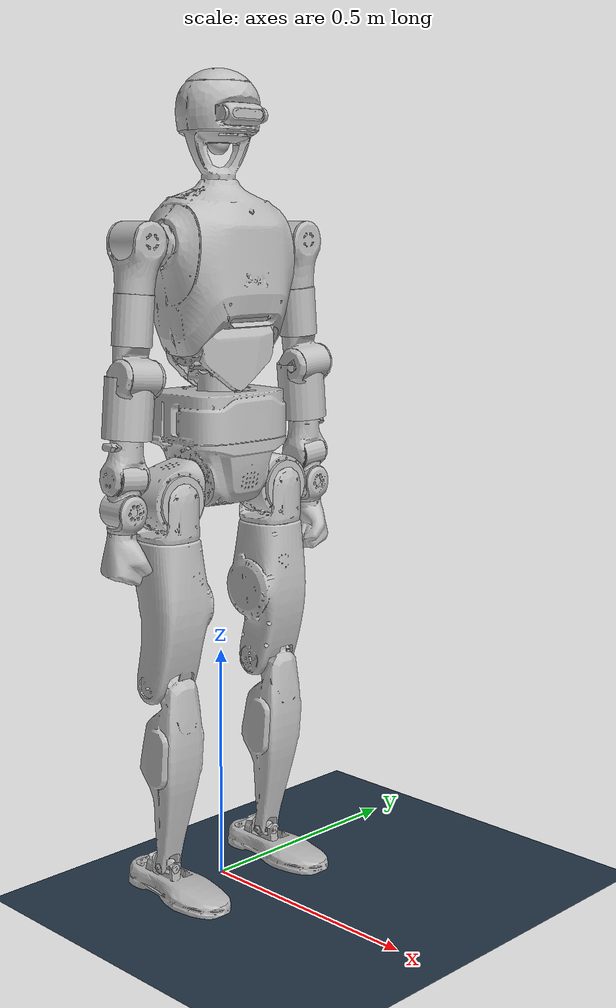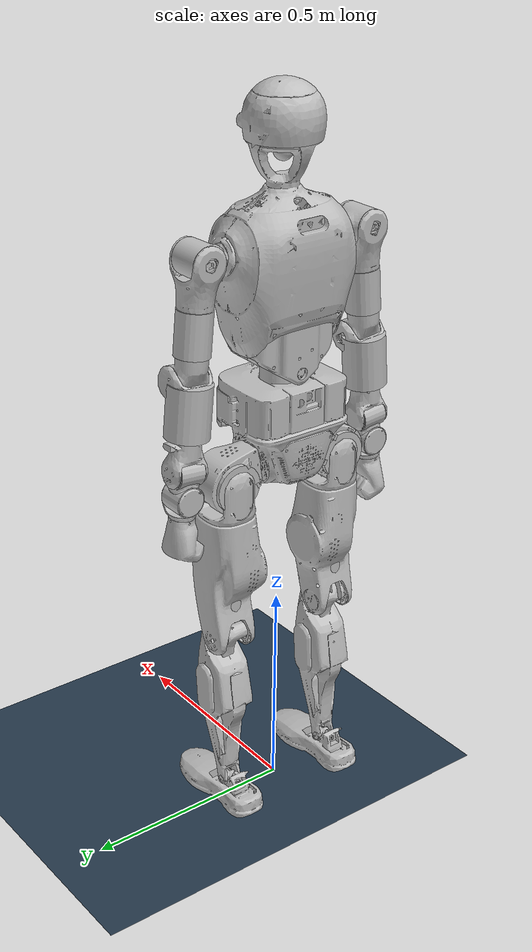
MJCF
<mujoco model="tiangong3">
  <compiler angle="radian" meshdir="../meshes/"/>
  <option integrator="implicitfast" timestep='0.001' iterations='100' solver='CG' gravity='0 0 -9.81'>
  <flag contact="enable" energy="enable"/>
  </option>
  <!-- 禁用位置控制器 -->
  <option actuatorgroupdisable="0 1 3"/>

  <default>
    <default class="large_actuator">
      <position kp="2000" kv="100" forcerange="-105 105"/>
    </default>
    <default class="small_actuator">
      <position kp="500" kv="50" forcerange="-52 52"/>
    </default>
  </default>

  <default>
    <default class="arm_motor">
      <joint damping="1" armature="0.1" frictionloss="0.1"/>
    </default>
    <default class="wrist_motor">
      <joint damping="1" armature="0.0236" frictionloss="0.1"/>
    </default>
    <default class="waist_motor">
      <joint damping="1" armature="0.17" frictionloss="0.1"/>
    </default>
    <default class="hip_pitch_motor">
      <joint damping="1" armature="0.24" frictionloss="0.1"/>
    </default>
    <default class="hip_roll_motor">
      <joint damping="1" armature="0.24" frictionloss="0.1"/>
    </default>
    <default class="hip_yaw_motor">
      <joint damping="1" armature="0.18" frictionloss="0.1"/>
    </default>
    <default class="knee_motor">
      <joint damping="1" armature="0.37" frictionloss="0.1"/>
    </default>
    <default class="ankle_motor">
      <joint damping="1" armature="0.032" frictionloss="0.1"/>
    </default>
  </default>

  <actuator>
    <!-- 位置控制器（pos_前缀） -->
    <!-- 左腿关节驱动器 -->
    <position class="large_actuator" name="pos_hip_pitch_l_joint" joint="hip_pitch_l_joint" ctrlrange="-3.05433 2.79253" group="0"/>
    <position class="large_actuator" name="pos_hip_roll_l_joint" joint="hip_roll_l_joint" ctrlrange="-0.418879 2.61799" group="0"/>
    <position class="large_actuator" name="pos_hip_yaw_l_joint" joint="hip_yaw_l_joint" ctrlrange="-1.39626 4.45059" group="0"/>
    <position class="large_actuator" name="pos_knee_pitch_l_joint" joint="knee_pitch_l_joint" ctrlrange="-0.0872665 2.53073" group="0"/>
    <position class="large_actuator" name="pos_ankle_pitch_l_joint" joint="ankle_pitch_l_joint" ctrlrange="-1.18682 0.523599" group="0"/>
    <position class="small_actuator" name="pos_ankle_roll_l_joint" joint="ankle_roll_l_joint" ctrlrange="-0.523599 0.523599" group="0"/>

    <!-- 右腿关节驱动器 -->
    <position class="large_actuator" name="pos_hip_pitch_r_joint" joint="hip_pitch_r_joint" ctrlrange="-3.05433 2.79253" group="0"/>
    <position class="large_actuator" name="pos_hip_roll_r_joint" joint="hip_roll_r_joint" ctrlrange="-2.61799 0.418879" group="0"/>
    <position class="large_actuator" name="pos_hip_yaw_r_joint" joint="hip_yaw_r_joint" ctrlrange="-4.45059 1.39626" group="0"/>
    <position class="large_actuator" name="pos_knee_pitch_r_joint" joint="knee_pitch_r_joint" ctrlrange="-0.0872665 2.53073" group="0"/>
    <position class="large_actuator" name="pos_ankle_pitch_r_joint" joint="ankle_pitch_r_joint" ctrlrange="-1.18682 0.523599" group="0"/>
    <position class="small_actuator" name="pos_ankle_roll_r_joint" joint="ankle_roll_r_joint" ctrlrange="-0.523599 0.523599" group="0"/>

    <!-- 腰部关节驱动器 -->
    <position class="large_actuator" name="pos_waist_yaw_joint" joint="waist_yaw_joint" ctrlrange="-2.61799 3.22886" group="1"/>
    <position class="large_actuator" name="pos_waist_roll_joint" joint="waist_roll_joint" ctrlrange="-0.436332 0.436332" group="1"/>
    <position class="large_actuator" name="pos_waist_pitch_joint" joint="waist_pitch_joint" ctrlrange="-0.523599 0.872665" group="1"/>

    <!-- 头部关节驱动器 -->
    <position class="small_actuator" name="pos_head_yaw_joint" joint="head_yaw_joint" ctrlrange="-1.0472 1.0472" group="3"/>
    <position class="small_actuator" name="pos_head_pitch_joint" joint="head_pitch_joint" ctrlrange="-0.872665 0.261799" group="3"/>

    <!-- 上肢关节驱动器 -->
    <position class="large_actuator" name="pos_shoulder_pitch_l_joint" joint="shoulder_pitch_l_joint" ctrlrange="-2.84489 2.84489" group="3"/>
    <position class="large_actuator" name="pos_shoulder_roll_l_joint" joint="shoulder_roll_l_joint" ctrlrange="-0.191986 3.33358" group="3"/>
    <position class="large_actuator" name="pos_shoulder_yaw_l_joint" joint="shoulder_yaw_l_joint" ctrlrange="-2.84489 2.84489" group="3"/>
    <position class="large_actuator" name="pos_elbow_pitch_l_joint" joint="elbow_pitch_l_joint" ctrlrange="-2.54818 0.191986" group="3"/>
    <position class="large_actuator" name="pos_elbow_yaw_l_joint" joint="elbow_yaw_l_joint" ctrlrange="-2.84489 2.84489" group="3"/>
    <position class="large_actuator" name="pos_wrist_pitch_l_joint" joint="wrist_pitch_l_joint" ctrlrange="-1.32645 1.32645" group="3"/>
    <position class="small_actuator" name="pos_wrist_roll_l_joint" joint="wrist_roll_l_joint" ctrlrange="-1.32645 1.32645" group="3"/>

    <position class="large_actuator" name="pos_shoulder_pitch_r_joint" joint="shoulder_pitch_r_joint" ctrlrange="-2.84489 2.84489" group="3"/>
    <position class="large_actuator" name="pos_shoulder_roll_r_joint" joint="shoulder_roll_r_joint" ctrlrange="-3.33358 0.191986" group="3"/>
    <position class="large_actuator" name="pos_shoulder_yaw_r_joint" joint="shoulder_yaw_r_joint" ctrlrange="-2.84489 2.84489" group="3"/>
    <position class="large_actuator" name="pos_elbow_pitch_r_joint" joint="elbow_pitch_r_joint" ctrlrange="-2.54818 0.191986" group="3"/>
    <position class="large_actuator" name="pos_elbow_yaw_r_joint" joint="elbow_yaw_r_joint" ctrlrange="-2.84489 2.84489" group="3"/>
    <position class="large_actuator" name="pos_wrist_pitch_r_joint" joint="wrist_pitch_r_joint" ctrlrange="-1.32645 1.32645" group="3"/>
    <position class="small_actuator" name="pos_wrist_roll_r_joint" joint="wrist_roll_r_joint" ctrlrange="-1.32645 1.32645" group="3"/>

    <!-- 力控制器（motor_前缀） -->
    <!-- 左腿关节驱动器 -->
    <motor name="motor_hip_pitch_l_joint" joint="hip_pitch_l_joint" ctrlrange="-235 235" group="2"/>
    <motor name="motor_hip_roll_l_joint" joint="hip_roll_l_joint" ctrlrange="-235 235" group="2"/>
    <motor name="motor_hip_yaw_l_joint" joint="hip_yaw_l_joint" ctrlrange="-150 150" group="2"/>
    <motor name="motor_knee_pitch_l_joint" joint="knee_pitch_l_joint" ctrlrange="-400 400" group="2"/>
    <motor name="motor_ankle_pitch_l_joint" joint="ankle_pitch_l_joint" ctrlrange="-55 55" group="2"/>
    <motor name="motor_ankle_roll_l_joint" joint="ankle_roll_l_joint" ctrlrange="-55 55" group="2"/>

    <!-- 右腿关节驱动器 -->
    <motor name="motor_hip_pitch_r_joint" joint="hip_pitch_r_joint" ctrlrange="-235 235" group="2"/>
    <motor name="motor_hip_roll_r_joint" joint="hip_roll_r_joint" ctrlrange="-235 235" group="2"/>
    <motor name="motor_hip_yaw_r_joint" joint="hip_yaw_r_joint" ctrlrange="-150 150" group="2"/>
    <motor name="motor_knee_pitch_r_joint" joint="knee_pitch_r_joint" ctrlrange="-400 400" group="2"/>
    <motor name="motor_ankle_pitch_r_joint" joint="ankle_pitch_r_joint" ctrlrange="-55 55" group="2"/>
    <motor name="motor_ankle_roll_r_joint" joint="ankle_roll_r_joint" ctrlrange="-55 55" group="2"/>

    <!-- 腰部关节驱动器 -->
    <motor name="motor_waist_yaw_joint" joint="waist_yaw_joint" ctrlrange="-91 91" group="2"/>
    <motor name="motor_waist_roll_joint" joint="waist_roll_joint" ctrlrange="-91 91" group="2"/>
    <motor name="motor_waist_pitch_joint" joint="waist_pitch_joint" ctrlrange="-91 91" group="2"/>

    <!-- 头部关节驱动器 -->
    <motor name="motor_head_yaw_joint" joint="head_yaw_joint" ctrlrange="-6.3 6.3" group="2"/>
    <motor name="motor_head_pitch_joint" joint="head_pitch_joint" ctrlrange="-6.3 6.3" group="2"/>

    <!-- 上肢关节驱动器 -->
    <motor name="motor_shoulder_pitch_l_joint" joint="shoulder_pitch_l_joint" ctrlrange="-91 91" group="2"/>
    <motor name="motor_shoulder_roll_l_joint" joint="shoulder_roll_l_joint" ctrlrange="-60 60" group="2"/>
    <motor name="motor_shoulder_yaw_l_joint" joint="shoulder_yaw_l_joint" ctrlrange="-36 36" group="2"/>
    <motor name="motor_elbow_pitch_l_joint" joint="elbow_pitch_l_joint" ctrlrange="-60 60" group="2"/>
    <motor name="motor_elbow_yaw_l_joint" joint="elbow_yaw_l_joint" ctrlrange="-36 36" group="2"/>
    <motor name="motor_wrist_pitch_l_joint" joint="wrist_pitch_l_joint" ctrlrange="-36 36" group="2"/>
    <motor name="motor_wrist_roll_l_joint" joint="wrist_roll_l_joint" ctrlrange="-36 36" group="2"/>

    <motor name="motor_shoulder_pitch_r_joint" joint="shoulder_pitch_r_joint" ctrlrange="-91 91" group="2"/>
    <motor name="motor_shoulder_roll_r_joint" joint="shoulder_roll_r_joint" ctrlrange="-60 60" group="2"/>
    <motor name="motor_shoulder_yaw_r_joint" joint="shoulder_yaw_r_joint" ctrlrange="-36 36" group="2"/>
    <motor name="motor_elbow_pitch_r_joint" joint="elbow_pitch_r_joint" ctrlrange="-60 60" group="2"/>
    <motor name="motor_elbow_yaw_r_joint" joint="elbow_yaw_r_joint" ctrlrange="-36 36" group="2"/>
    <motor name="motor_wrist_pitch_r_joint" joint="wrist_pitch_r_joint" ctrlrange="-36 36" group="2"/>
    <motor name="motor_wrist_roll_r_joint" joint="wrist_roll_r_joint" ctrlrange="-36 36" group="2"/>
  </actuator>

  <sensor>
    <!-- 左腿关节传感器 -->
    <jointpos name="hip_pitch_l_joint_pos" joint="hip_pitch_l_joint"/>
    <jointpos name="hip_roll_l_joint_pos" joint="hip_roll_l_joint"/>
    <jointpos name="hip_yaw_l_joint_pos" joint="hip_yaw_l_joint"/>
    <jointpos name="knee_pitch_l_joint_pos" joint="knee_pitch_l_joint"/>
    <jointpos name="ankle_pitch_l_joint_pos" joint="ankle_pitch_l_joint"/>
    <jointpos name="ankle_roll_l_joint_pos" joint="ankle_roll_l_joint"/>

    <jointvel name="hip_pitch_l_joint_vel" joint="hip_pitch_l_joint"/>
    <jointvel name="hip_roll_l_joint_vel" joint="hip_roll_l_joint"/>
    <jointvel name="hip_yaw_l_joint_vel" joint="hip_yaw_l_joint"/>
    <jointvel name="knee_pitch_l_joint_vel" joint="knee_pitch_l_joint"/>
    <jointvel name="ankle_pitch_l_joint_vel" joint="ankle_pitch_l_joint"/>
    <jointvel name="ankle_roll_l_joint_vel" joint="ankle_roll_l_joint"/>

    <jointactuatorfrc name="hip_pitch_l_joint_torque" joint="hip_pitch_l_joint"/>
    <jointactuatorfrc name="hip_roll_l_joint_torque" joint="hip_roll_l_joint"/>
    <jointactuatorfrc name="hip_yaw_l_joint_torque" joint="hip_yaw_l_joint"/>
    <jointactuatorfrc name="knee_pitch_l_joint_torque" joint="knee_pitch_l_joint"/>
    <jointactuatorfrc name="ankle_pitch_l_joint_torque" joint="ankle_pitch_l_joint"/>
    <jointactuatorfrc name="ankle_roll_l_joint_torque" joint="ankle_roll_l_joint"/>

    <!-- 右腿关节传感器 -->
    <jointpos name="hip_pitch_r_joint_pos" joint="hip_pitch_r_joint"/>
    <jointpos name="hip_roll_r_joint_pos" joint="hip_roll_r_joint"/>
    <jointpos name="hip_yaw_r_joint_pos" joint="hip_yaw_r_joint"/>
    <jointpos name="knee_pitch_r_joint_pos" joint="knee_pitch_r_joint"/>
    <jointpos name="ankle_pitch_r_joint_pos" joint="ankle_pitch_r_joint"/>
    <jointpos name="ankle_roll_r_joint_pos" joint="ankle_roll_r_joint"/>

    <jointvel name="hip_pitch_r_joint_vel" joint="hip_pitch_r_joint"/>
    <jointvel name="hip_roll_r_joint_vel" joint="hip_roll_r_joint"/>
    <jointvel name="hip_yaw_r_joint_vel" joint="hip_yaw_r_joint"/>
    <jointvel name="knee_pitch_r_joint_vel" joint="knee_pitch_r_joint"/>
    <jointvel name="ankle_pitch_r_joint_vel" joint="ankle_pitch_r_joint"/>
    <jointvel name="ankle_roll_r_joint_vel" joint="ankle_roll_r_joint"/>

    <jointactuatorfrc name="hip_pitch_r_joint_torque" joint="hip_pitch_r_joint"/>
    <jointactuatorfrc name="hip_roll_r_joint_torque" joint="hip_roll_r_joint"/>
    <jointactuatorfrc name="hip_yaw_r_joint_torque" joint="hip_yaw_r_joint"/>
    <jointactuatorfrc name="knee_pitch_r_joint_torque" joint="knee_pitch_r_joint"/>
    <jointactuatorfrc name="ankle_pitch_r_joint_torque" joint="ankle_pitch_r_joint"/>
    <jointactuatorfrc name="ankle_roll_r_joint_torque" joint="ankle_roll_r_joint"/>

    <!-- 腰部关节传感器 -->
    <jointpos name="waist_yaw_joint_pos" joint="waist_yaw_joint"/>
    <jointpos name="waist_roll_joint_pos" joint="waist_roll_joint"/>
    <jointpos name="waist_pitch_joint_pos" joint="waist_pitch_joint"/>

    <jointvel name="waist_yaw_joint_vel" joint="waist_yaw_joint"/>
    <jointvel name="waist_roll_joint_vel" joint="waist_roll_joint"/>
    <jointvel name="waist_pitch_joint_vel" joint="waist_pitch_joint"/>

    <jointactuatorfrc name="waist_yaw_joint_torque" joint="waist_yaw_joint"/>
    <jointactuatorfrc name="waist_roll_joint_torque" joint="waist_roll_joint"/>
    <jointactuatorfrc name="waist_pitch_joint_torque" joint="waist_pitch_joint"/>

    <!-- 头部关节传感器 -->
    <jointpos name="head_yaw_joint_pos" joint="head_yaw_joint"/>
    <jointpos name="head_pitch_joint_pos" joint="head_pitch_joint"/>

    <jointvel name="head_yaw_joint_vel" joint="head_yaw_joint"/>
    <jointvel name="head_pitch_joint_vel" joint="head_pitch_joint"/>

    <jointactuatorfrc name="head_yaw_joint_torque" joint="head_yaw_joint"/>
    <jointactuatorfrc name="head_pitch_joint_torque" joint="head_pitch_joint"/>

    <!-- 左臂关节传感器 -->
    <jointpos name="shoulder_pitch_l_joint_pos" joint="shoulder_pitch_l_joint"/>
    <jointpos name="shoulder_roll_l_joint_pos" joint="shoulder_roll_l_joint"/>
    <jointpos name="shoulder_yaw_l_joint_pos" joint="shoulder_yaw_l_joint"/>
    <jointpos name="elbow_pitch_l_joint_pos" joint="elbow_pitch_l_joint"/>
    <jointpos name="elbow_yaw_l_joint_pos" joint="elbow_yaw_l_joint"/>
    <jointpos name="wrist_pitch_l_joint_pos" joint="wrist_pitch_l_joint"/>
    <jointpos name="wrist_roll_l_joint_pos" joint="wrist_roll_l_joint"/>

    <jointvel name="shoulder_pitch_l_joint_vel" joint="shoulder_pitch_l_joint"/>
    <jointvel name="shoulder_roll_l_joint_vel" joint="shoulder_roll_l_joint"/>
    <jointvel name="shoulder_yaw_l_joint_vel" joint="shoulder_yaw_l_joint"/>
    <jointvel name="elbow_pitch_l_joint_vel" joint="elbow_pitch_l_joint"/>
    <jointvel name="elbow_yaw_l_joint_vel" joint="elbow_yaw_l_joint"/>
    <jointvel name="wrist_pitch_l_joint_vel" joint="wrist_pitch_l_joint"/>
    <jointvel name="wrist_roll_l_joint_vel" joint="wrist_roll_l_joint"/>

    <jointactuatorfrc name="shoulder_pitch_l_joint_torque" joint="shoulder_pitch_l_joint"/>
    <jointactuatorfrc name="shoulder_roll_l_joint_torque" joint="shoulder_roll_l_joint"/>
    <jointactuatorfrc name="shoulder_yaw_l_joint_torque" joint="shoulder_yaw_l_joint"/>
    <jointactuatorfrc name="elbow_pitch_l_joint_torque" joint="elbow_pitch_l_joint"/>
    <jointactuatorfrc name="elbow_yaw_l_joint_torque" joint="elbow_yaw_l_joint"/>
    <jointactuatorfrc name="wrist_pitch_l_joint_torque" joint="wrist_pitch_l_joint"/>
    <jointactuatorfrc name="wrist_roll_l_joint_torque" joint="wrist_roll_l_joint"/>

    <!-- 右臂关节传感器 -->
    <jointpos name="shoulder_pitch_r_joint_pos" joint="shoulder_pitch_r_joint"/>
    <jointpos name="shoulder_roll_r_joint_pos" joint="shoulder_roll_r_joint"/>
    <jointpos name="shoulder_yaw_r_joint_pos" joint="shoulder_yaw_r_joint"/>
    <jointpos name="elbow_pitch_r_joint_pos" joint="elbow_pitch_r_joint"/>
    <jointpos name="elbow_yaw_r_joint_pos" joint="elbow_yaw_r_joint"/>
    <jointpos name="wrist_pitch_r_joint_pos" joint="wrist_pitch_r_joint"/>
    <jointpos name="wrist_roll_r_joint_pos" joint="wrist_roll_r_joint"/>

    <jointvel name="shoulder_pitch_r_joint_vel" joint="shoulder_pitch_r_joint"/>
    <jointvel name="shoulder_roll_r_joint_vel" joint="shoulder_roll_r_joint"/>
    <jointvel name="shoulder_yaw_r_joint_vel" joint="shoulder_yaw_r_joint"/>
    <jointvel name="elbow_pitch_r_joint_vel" joint="elbow_pitch_r_joint"/>
    <jointvel name="elbow_yaw_r_joint_vel" joint="elbow_yaw_r_joint"/>
    <jointvel name="wrist_pitch_r_joint_vel" joint="wrist_pitch_r_joint"/>
    <jointvel name="wrist_roll_r_joint_vel" joint="wrist_roll_r_joint"/>

    <jointactuatorfrc name="shoulder_pitch_r_joint_torque" joint="shoulder_pitch_r_joint"/>
    <jointactuatorfrc name="shoulder_roll_r_joint_torque" joint="shoulder_roll_r_joint"/>
    <jointactuatorfrc name="shoulder_yaw_r_joint_torque" joint="shoulder_yaw_r_joint"/>
    <jointactuatorfrc name="elbow_pitch_r_joint_torque" joint="elbow_pitch_r_joint"/>
    <jointactuatorfrc name="elbow_yaw_r_joint_torque" joint="elbow_yaw_r_joint"/>
    <jointactuatorfrc name="wrist_pitch_r_joint_torque" joint="wrist_pitch_r_joint"/>
    <jointactuatorfrc name="wrist_roll_r_joint_torque" joint="wrist_roll_r_joint"/>

    <!-- imu -->
    <framequat name="orientation" objtype="site" objname="imu" />
    <gyro name="angular-velocity" site="imu" />
    <accelerometer name="linear-acceleration" site="imu" />
    <framepos name="position" objtype="site" objname="imu" />
    <framelinvel name="linear-velocity" objtype="site" objname="imu" />
    <magnetometer name='magnetometer' site='imu'/>
  </sensor>

  <asset>
    <texture name="texplane" type="2d" builtin="checker" rgb1=".2 .3 .4" rgb2=".1 0.15 0.2"
        width="512" height="512" mark="cross" markrgb=".8 .8 .8"/>
    <texture name="texplane2" type="2d" builtin="checker" rgb1="1 0.3137 0.1843" rgb2="0.0 0.30196 0.38039"
        width="512" height="512" mark="cross" markrgb=".8 .8 .8"/>
    <material name="matplane" reflectance="0." texture="texplane" texrepeat="1 1" texuniform="true"/>
    <material name="matplane2" reflectance="0.1" texture="texplane2" texrepeat="1 1" texuniform="true"/>

    <mesh name="pelvis" file="pelvis.STL"/>
    <mesh name="hip_pitch_l_link" file="hip_pitch_l_link.STL"/>
    <mesh name="hip_roll_l_link" file="hip_roll_l_link.STL"/>
    <mesh name="hip_yaw_l_link" file="hip_yaw_l_link.STL"/>
    <mesh name="knee_pitch_l_link" file="knee_pitch_l_link.STL"/>
    <mesh name="ankle_pitch_l_link" file="ankle_pitch_l_link.STL"/>
    <mesh name="ankle_roll_l_link" file="ankle_roll_l_link.STL"/>
    <mesh name="hip_pitch_r_link" file="hip_pitch_r_link.STL"/>
    <mesh name="hip_roll_r_link" file="hip_roll_r_link.STL"/>
    <mesh name="hip_yaw_r_link" file="hip_yaw_r_link.STL"/>
    <mesh name="knee_pitch_r_link" file="knee_pitch_r_link.STL"/>
    <mesh name="ankle_pitch_r_link" file="ankle_pitch_r_link.STL"/>
    <mesh name="ankle_roll_r_link" file="ankle_roll_r_link.STL"/>
    <mesh name="imu_waist_link" file="imu_waist_link.STL"/>
    <mesh name="waist_yaw_link" file="waist_yaw_link.STL"/>
    <mesh name="waist_roll_link" file="waist_roll_link.STL"/>
    <mesh name="waist_pitch_link" file="waist_pitch_link.STL"/>
    <mesh name="camera_body_front_link" file="camera_body_front_link.STL"/>
    <mesh name="imu_head_link" file="imu_head_link.STL"/>
    <mesh name="radar_head_link" file="radar_head_link.STL"/>
    <mesh name="head_yaw_link" file="head_yaw_link.STL"/>
    <mesh name="head_pitch_link" file="head_pitch_link.STL"/>
    <mesh name="camera_head_link" file="camera_head_link.STL"/>
    <mesh name="shoulder_pitch_l_link" file="shoulder_pitch_l_link.STL"/>
    <mesh name="shoulder_roll_l_link" file="shoulder_roll_l_link.STL"/>
    <mesh name="shoulder_yaw_l_link" file="shoulder_yaw_l_link.STL"/>
    <mesh name="elbow_pitch_l_link" file="elbow_pitch_l_link.STL"/>
    <mesh name="elbow_yaw_l_link" file="elbow_yaw_l_link.STL"/>
    <mesh name="wrist_pitch_l_link" file="wrist_pitch_l_link.STL"/>
    <mesh name="wrist_roll_l_link" file="wrist_roll_l_link.STL"/>
    <mesh name="left_tcp_link" file="left_tcp_link.STL"/>
    <mesh name="shoulder_pitch_r_link" file="shoulder_pitch_r_link.STL"/>
    <mesh name="shoulder_roll_r_link" file="shoulder_roll_r_link.STL"/>
    <mesh name="shoulder_yaw_r_link" file="shoulder_yaw_r_link.STL"/>
    <mesh name="elbow_pitch_r_link" file="elbow_pitch_r_link.STL"/>
    <mesh name="elbow_yaw_r_link" file="elbow_yaw_r_link.STL"/>
    <mesh name="wrist_pitch_r_link" file="wrist_pitch_r_link.STL"/>
    <mesh name="wrist_roll_r_link" file="wrist_roll_r_link.STL"/>
    <mesh name="right_tcp_link" file="right_tcp_link.STL"/>
  </asset>

  <worldbody>
    <light directional="true" diffuse=".4 .4 .4" specular="0.1 0.1 0.1" pos="0 0 5.0" dir="0 0 -1" castshadow="false"/>
    <light directional="true" diffuse=".6 .6 .6" specular="0.2 0.2 0.2" pos="0 0 4" dir="0 0 -1"/>
    <geom name="ground" type="plane" size="0 0 1" pos="0.001 0 0" quat="1 0 0 0" material="matplane" condim="1" conaffinity='15' friction="1.5 0.005 0.0001"/>

    <body name="pelvis" pos="0 0 1">
      <inertial pos="-0.000980697 0.00034548 -0.0546304" quat="0.999055 0.00159355 0.0310332 -0.030378" mass="11.5366" diaginertia="0.0709017 0.0648376 0.0499767"/>
      <joint name="pelvis_to_world_joint" type="free" limited="false" actuatorfrclimited="false"/>
      <geom type="mesh" contype="0" conaffinity="0" group="1" density="0" rgba="0.752941 0.752941 0.752941 1" mesh="pelvis"/>
      <geom pos="-0.081641 -0.00010952 -0.063057" quat="-2.59903e-06 -0.707565 0.706648 2.59566e-06" type="mesh" contype="0" conaffinity="0" group="1" density="0" rgba="0.752941 0.752941 0.752941 1" mesh="imu_waist_link"/>
      <geom pos="-0.081641 -0.00010952 -0.063057" quat="-2.59903e-06 -0.707565 0.706648 2.59566e-06" type="mesh" rgba="0.752941 0.752941 0.752941 1" mesh="imu_waist_link"/>
      <site name='imu' size='0.01' pos='0.0 0.0 0.0'/>
      <body name="hip_pitch_l_link" pos="-0.00010305 0.076815 -0.11847" quat="0.996195 -0.0871543 -5.84587e-05 0.000668198">
        <inertial pos="0.009185 0.069598 -0.024259" quat="0.850127 0.523369 -0.0526812 -0.0243712" mass="2.37312" diaginertia="0.00506726 0.00389537 0.00347837"/>
        <joint name="hip_pitch_l_joint" class="hip_pitch_motor" pos="0 0 0" axis="0 1 0" range="-3.05433 2.79253" actuatorfrcrange="-235 235"/>
        <geom type="mesh" contype="0" conaffinity="0" group="1" density="0" rgba="0.752941 0.752941 0.752941 1" mesh="hip_pitch_l_link"/>
        <body name="hip_roll_l_link" pos="0 0.073992 -0.026966" quat="0.996195 0.0871543 0 0">
          <inertial pos="-0.001737 -9.9e-05 -0.038553" quat="0.493093 0.509072 0.50841 0.489105" mass="0.539594" diaginertia="0.00168502 0.00140946 0.00104053"/>
          <joint name="hip_roll_l_joint" class="hip_roll_motor" pos="0 0 0" axis="1 0 0" range="-0.418879 2.61799" actuatorfrcrange="-235 235"/>
          <geom type="mesh" contype="0" conaffinity="0" group="1" density="0" rgba="0.752941 0.752941 0.752941 1" mesh="hip_roll_l_link"/>
          <geom size="0.055 0.05" quat="0.707107 0 0.707107 0" type="cylinder" rgba="0.752941 0.752941 0.752941 1"/>
          <body name="hip_yaw_l_link" pos="0 0 -0.0785">
            <inertial pos="0.001492 -0.023508 -0.126309" quat="0.997142 -0.048314 -0.00119644 -0.0580702" mass="5.56215" diaginertia="0.0418929 0.0395442 0.0134839"/>
            <joint name="hip_yaw_l_joint" class="hip_yaw_motor" pos="0 0 0" axis="0 0 1" range="-1.39626 4.45059" actuatorfrcrange="-150 150"/>
            <geom type="mesh" contype="0" conaffinity="0" group="1" density="0" rgba="0.752941 0.752941 0.752941 1" mesh="hip_yaw_l_link"/>
            <geom size="0.04 0.1" pos="0 0 -0.15" type="cylinder" rgba="0.752941 0.752941 0.752941 1"/>
            <body name="knee_pitch_l_link" pos="-0.012927 0 -0.30599" quat="0.999958 0 0.00920887 0">
              <inertial pos="0.024251 0.000717 -0.15523" quat="0.688202 0.0100453 0.0212912 0.725137" mass="2.94534" diaginertia="0.032453 0.0322551 0.00336394"/>
              <joint name="knee_pitch_l_joint" class="knee_motor" pos="0 0 0" axis="0 1 0" range="-0.0872665 2.53073" actuatorfrcrange="-400 400"/>
              <geom type="mesh" contype="0" conaffinity="0" group="1" density="0" rgba="0.752941 0.752941 0.752941 1" mesh="knee_pitch_l_link"/>
              <body name="ankle_pitch_l_link" pos="0.0073682 0 -0.39993">
                <inertial pos="0 0 0" quat="0 0.707107 0 0.707107" mass="0.142658" diaginertia="4.9e-05 3.2e-05 2.3e-05"/>
                <joint name="ankle_pitch_l_joint" class="ankle_motor" pos="0 0 0" axis="0 1 0" range="-1.18682 0.523599" actuatorfrcrange="-55 55"/>
                <geom type="mesh" contype="0" conaffinity="0" group="1" density="0" rgba="0.752941 0.752941 0.752941 1" mesh="ankle_pitch_l_link"/>
                <body name="ankle_roll_l_link">
                  <inertial pos="0.024536 -1.7e-05 -0.033593" quat="0.000973792 0.727447 0.00122134 0.686162" mass="0.888892" diaginertia="0.00514091 0.004839 0.000764092"/>
                  <joint name="ankle_roll_l_joint" class="ankle_motor" pos="0 0 0" axis="1 0 0" range="-0.523599 0.523599" actuatorfrcrange="-55 55"/>
                  <geom type="mesh" contype="0" conaffinity="0" group="1" density="0" rgba="0.752941 0.752941 0.752941 1" mesh="ankle_roll_l_link"/>
                  <geom name="foot_left" type="mesh" mesh="ankle_roll_l_link" rgba="0.752941 0.752941 0.752941 1"/>
                </body>
              </body>
            </body>
          </body>
        </body>
      </body>
      <body name="hip_pitch_r_link" pos="0.00010305 -0.076815 -0.11847" quat="0.996195 0.0871543 5.84587e-05 0.000668198">
        <inertial pos="0.009185 -0.069598 -0.024259" quat="0.523369 0.850127 0.0243712 0.0526812" mass="2.37312" diaginertia="0.00506726 0.00389537 0.00347837"/>
        <joint name="hip_pitch_r_joint" class="hip_pitch_motor" pos="0 0 0" axis="0 1 0" range="-3.05433 2.79253" actuatorfrcrange="-235 235"/>
        <geom type="mesh" contype="0" conaffinity="0" group="1" density="0" rgba="0.752941 0.752941 0.752941 1" mesh="hip_pitch_r_link"/>
        <body name="hip_roll_r_link" pos="0 -0.073992 -0.026966" quat="0.996195 -0.0871543 0 0">
          <inertial pos="-0.001737 9.9e-05 -0.038553" quat="0.489105 0.50841 0.509072 0.493093" mass="0.539594" diaginertia="0.00168502 0.00140946 0.00104053"/>
          <joint name="hip_roll_r_joint" class="hip_roll_motor" pos="0 0 0" axis="1 0 0" range="-2.61799 0.418879" actuatorfrcrange="-235 235"/>
          <geom type="mesh" contype="0" conaffinity="0" group="1" density="0" rgba="0.752941 0.752941 0.752941 1" mesh="hip_roll_r_link"/>
          <geom size="0.055 0.05" quat="0.707107 0 0.707107 0" type="cylinder" rgba="0.752941 0.752941 0.752941 1"/>
          <body name="hip_yaw_r_link" pos="0 0 -0.0785">
            <inertial pos="0.001492 0.023508 -0.126309" quat="0.997142 0.048314 -0.00119644 0.0580702" mass="5.56215" diaginertia="0.0418929 0.0395442 0.0134839"/>
            <joint name="hip_yaw_r_joint" class="hip_yaw_motor" pos="0 0 0" axis="0 0 1" range="-4.45059 1.39626" actuatorfrcrange="-150 150"/>
            <geom type="mesh" contype="0" conaffinity="0" group="1" density="0" rgba="0.752941 0.752941 0.752941 1" mesh="hip_yaw_r_link"/>
            <geom size="0.04 0.1" pos="0 0 -0.15" type="cylinder" rgba="0.752941 0.752941 0.752941 1"/>
            <body name="knee_pitch_r_link" pos="-0.012927 0 -0.30599" quat="0.999835 0 0.018192 0">
              <inertial pos="0.024251 -0.000717 -0.15523" quat="0.725137 0.0212912 0.0100453 0.688202" mass="2.94534" diaginertia="0.032453 0.0322551 0.00336394"/>
              <joint name="knee_pitch_r_joint" class="knee_motor" pos="0 0 0" axis="0 1 0" range="-0.0872665 2.53073" actuatorfrcrange="-400 400"/>
              <geom type="mesh" contype="0" conaffinity="0" group="1" density="0" rgba="0.752941 0.752941 0.752941 1" mesh="knee_pitch_r_link"/>
              <body name="ankle_pitch_r_link" pos="0.014553 0 -0.39974">
                <inertial pos="0 0 0" quat="0 0.707107 0 0.707107" mass="0.142658" diaginertia="4.9e-05 3.2e-05 2.3e-05"/>
                <joint name="ankle_pitch_r_joint" class="ankle_motor" pos="0 0 0" axis="0 1 0" range="-1.18682 0.523599" actuatorfrcrange="-55 55"/>
                <geom type="mesh" contype="0" conaffinity="0" group="1" density="0" rgba="0.752941 0.752941 0.752941 1" mesh="ankle_pitch_r_link"/>
                <body name="ankle_roll_r_link">
                  <inertial pos="0.024536 1.7e-05 -0.033593" quat="-0.000973792 0.727447 -0.00122134 0.686162" mass="0.888892" diaginertia="0.00514091 0.004839 0.000764092"/>
                  <joint name="ankle_roll_r_joint" class="ankle_motor" pos="0 0 0" axis="1 0 0" range="-0.523599 0.523599" actuatorfrcrange="-55 55"/>
                  <geom type="mesh" contype="0" conaffinity="0" group="1" density="0" rgba="0.752941 0.752941 0.752941 1" mesh="ankle_roll_r_link"/>
                  <geom name="foot_right" type="mesh" mesh="ankle_roll_r_link" rgba="0.752941 0.752941 0.752941 1"/>
                </body>
              </body>
            </body>
          </body>
        </body>
      </body>
      <body name="waist_yaw_link" quat="1 0 0 0.00067075">
        <inertial pos="-0.002204 -0.001068 0.038101" quat="0.608787 -0.063929 -0.10545 0.783691" mass="1.9088" diaginertia="0.00329388 0.00309694 0.00213417"/>
        <joint name="waist_yaw_joint" class="waist_motor" pos="0 0 0" axis="0 0 1" range="-2.61799 3.22886" actuatorfrcrange="-91 91"/>
        <geom type="mesh" contype="0" conaffinity="0" group="1" density="0" rgba="0.752941 0.752941 0.752941 1" mesh="waist_yaw_link"/>
        <body name="waist_roll_link" pos="0 0 0.083796">
          <inertial pos="-0.007616 -0.005361 0.069902" quat="0.496913 0.542577 -0.446994 0.508805" mass="3.99599" diaginertia="0.0166451 0.0163497 0.0089052"/>
          <joint name="waist_roll_joint" class="waist_motor" pos="0 0 0" axis="1 0 0" range="-0.436332 0.436332" actuatorfrcrange="-150 150"/>
          <geom type="mesh" contype="0" conaffinity="0" group="1" density="0" rgba="0.752941 0.752941 0.752941 1" mesh="waist_roll_link"/>
          <body name="waist_pitch_link" pos="0 0 0.078424">
            <inertial pos="0.000506391 0.0013591 0.184511" quat="0.999127 0.00357176 -0.0416188 0.00069048" mass="10.7736" diaginertia="0.180055 0.144522 0.0993568"/>
            <joint name="waist_pitch_joint" class="waist_motor" pos="0 0 0" axis="0 1 0" range="-0.523599 0.872665" actuatorfrcrange="-150 150"/>
            <geom type="mesh" contype="0" conaffinity="0" group="1" density="0" rgba="0.752941 0.752941 0.752941 1" mesh="waist_pitch_link"/>
            <geom type="mesh" rgba="0.752941 0.752941 0.752941 1" mesh="waist_pitch_link"/>
            <geom pos="0.092709 -0.02375 0.039976" quat="0.21264 0.674376 0.674378 0.212641" type="mesh" contype="0" conaffinity="0" group="1" density="0" rgba="0.752941 0.752941 0.752941 1" mesh="camera_body_front_link"/>
            <geom pos="-0.057551 0 0.42777" quat="-2.59734e-06 -0.707105 0.707108 2.59735e-06" type="mesh" contype="0" conaffinity="0" group="1" density="0" rgba="0.752941 0.752941 0.752941 1" mesh="imu_head_link"/>
            <geom pos="0.00022262 0 0.38237" quat="-2.59734e-06 0.707105 0.707108 -2.59735e-06" type="mesh" contype="0" conaffinity="0" group="1" density="0" rgba="0.752941 0.752941 0.752941 1" mesh="radar_head_link"/>
            <body name="head_yaw_link" pos="0.00022262 0 0.43727">
              <inertial pos="0.014806 -0.000947 0.027077" quat="0.43325 0.541781 -0.418042 0.586522" mass="0.968233" diaginertia="0.00250864 0.00194175 0.00166661"/>
              <joint name="head_yaw_joint" class="arm_motor" pos="0 0 0" axis="0 0 1" range="-1.0472 1.0472" actuatorfrcrange="-6.3 6.3"/>
              <geom type="mesh" contype="0" conaffinity="0" group="1" density="0" rgba="0.752941 0.752941 0.752941 1" mesh="head_yaw_link"/>
              <body name="head_pitch_link" pos="0.0689 -5.5575e-05 -0.0008">
                <inertial pos="-0.00115802 0.00106893 0.000146555" quat="0.70718 0.706996 0.0058219 0.00450679" mass="0.187922" diaginertia="0.000183239 0.000179216 4.29872e-05"/>
                <joint name="head_pitch_joint" class="arm_motor" pos="0 0 0" axis="0 1 0" range="-0.872665 0.261799" actuatorfrcrange="-6.3 6.3"/>
                <geom type="mesh" contype="0" conaffinity="0" group="1" density="0" rgba="0.752941 0.752941 0.752941 1" mesh="head_pitch_link"/>
                <geom pos="0.01555 0.011078 0" quat="0.499998 -0.5 0.500002 -0.5" type="mesh" contype="0" conaffinity="0" group="1" density="0" rgba="0.752941 0.752941 0.752941 1" mesh="camera_head_link"/>
              </body>
            </body>
            <body name="shoulder_pitch_l_link" pos="0 0.14552 0.18664" quat="0.999048 0.0436192 0 0">
              <inertial pos="0.007443 0.062042 -2.5e-05" quat="-0.0252848 0.706061 0.0254444 0.707242" mass="0.990828" diaginertia="0.001308 0.0010568 0.000707201"/>
              <joint name="shoulder_pitch_l_joint" class="arm_motor" pos="0 0 0" axis="0 1 0" range="-2.84489 2.84489" actuatorfrcrange="-90 90"/>
              <geom type="mesh" contype="0" conaffinity="0" group="1" density="0" rgba="0.752941 0.752941 0.752941 1" mesh="shoulder_pitch_l_link"/>
              <body name="shoulder_roll_l_link" pos="0 0.0678 0">
                <inertial pos="0.000677 -0.000524 -0.048872" quat="0.704721 0.0414703 0.0493922 0.706547" mass="0.444503" diaginertia="0.00101706 0.000828265 0.000568676"/>
                <joint name="shoulder_roll_l_joint" class="arm_motor" pos="0 0 0" axis="1 0 0" range="-0.191986 3.33358" actuatorfrcrange="-90 90"/>
                <geom type="mesh" contype="0" conaffinity="0" group="1" density="0" rgba="0.752941 0.752941 0.752941 1" mesh="shoulder_roll_l_link"/>
                <body name="shoulder_yaw_l_link" pos="0 0 -0.1004">
                  <inertial pos="0.010088 0.004252 -0.094438" quat="0.997226 0.0281855 -0.0684353 0.00790338" mass="1.53899" diaginertia="0.00868499 0.00814341 0.0012946"/>
                  <joint name="shoulder_yaw_l_joint" class="arm_motor" pos="0 0 0" axis="0 0 1" range="-2.84489 2.84489" actuatorfrcrange="-50 50"/>
                  <geom type="mesh" contype="0" conaffinity="0" group="1" density="0" rgba="0.752941 0.752941 0.752941 1" mesh="shoulder_yaw_l_link"/>
                  <geom size="0.04 0.05" pos="0 0 -0.05" type="cylinder" rgba="0.752941 0.752941 0.752941 1"/>
                  <body name="elbow_pitch_l_link" pos="0.02 0 -0.1596">
                    <inertial pos="-0.017193 0.00062 -0.061208" quat="0.996357 -0.0253784 0.0813669 -0.00269485" mass="0.780806" diaginertia="0.00149977 0.00133837 0.000786854"/>
                    <joint name="elbow_pitch_l_joint" class="arm_motor" pos="0 0 0" axis="0 1 0" range="-2.54818 0.191986" actuatorfrcrange="-50 50"/>
                    <geom type="mesh" contype="0" conaffinity="0" group="1" density="0" rgba="0.752941 0.752941 0.752941 1" mesh="elbow_pitch_l_link"/>
                    <geom size="0.05 0.06" pos="-0.02 0 -0.06" type="cylinder" rgba="0.752941 0.752941 0.752941 1"/>
                    <body name="elbow_yaw_l_link" pos="-0.02 0 -0.104">
                      <inertial pos="-0.000303 0.004732 -0.05189" quat="0.99732 0.0730281 -0.00218161 -0.00391911" mass="0.36493" diaginertia="0.000521012 0.000408496 0.000290492"/>
                      <joint name="elbow_yaw_l_joint" class="arm_motor" pos="0 0 0" axis="0 0 1" range="-2.84489 2.84489" actuatorfrcrange="-25 25"/>
                      <geom type="mesh" contype="0" conaffinity="0" group="1" density="0" rgba="0.752941 0.752941 0.752941 1" mesh="elbow_yaw_l_link"/>
                      <body name="wrist_pitch_l_link" pos="0 0 -0.0944">
                        <inertial pos="-0.000656 -0.000789 -0.02945" quat="0.999659 0.0153663 0.0125731 -0.0169895" mass="1.08923" diaginertia="0.00180068 0.00174888 0.000786449"/>
                        <joint name="wrist_pitch_l_joint" class="wrist_motor" pos="0 0 0" axis="0 1 0" range="-1.32645 1.32645" actuatorfrcrange="-25 25"/>
                        <geom type="mesh" contype="0" conaffinity="0" group="1" density="0" rgba="0.752941 0.752941 0.752941 1" mesh="wrist_pitch_l_link"/>
                        <geom name="wrist_pitch_l_collision_1" size="0.035 0.03" quat="0.499998 0.500002 -0.5 0.5" type="cylinder" rgba="0.752941 0.752941 0.752941 1"/>
                        <geom name="wrist_pitch_l_collision_2" size="0.035 0.03" pos="0 0 -0.062" quat="0.707105 0 -0.707108 0" type="cylinder" rgba="0.752941 0.752941 0.752941 1"/>
                        <body name="wrist_roll_l_link" pos="0 0 -0.062">
                          <inertial pos="0.00653857 -0.00375179 -0.0767757" quat="0.765914 0.0243568 0.103743 0.634051" mass="0.579157" diaginertia="0.00138911 0.00125525 0.000468286"/>
                          <joint name="wrist_roll_l_joint" class="wrist_motor" pos="0 0 0" axis="1 0 0" range="-1.32645 1.32645" actuatorfrcrange="-25 25"/>
                          <geom type="mesh" contype="0" conaffinity="0" group="1" density="0" rgba="0.752941 0.752941 0.752941 1" mesh="wrist_roll_l_link"/>
                          <geom pos="0 0 -0.044" quat="1 0 0 0" type="mesh" contype="0" conaffinity="0" group="1" density="0" rgba="0.752941 0.752941 0.752941 1" mesh="left_tcp_link"/>
                          <geom pos="0 0 -0.044" quat="1 0 0 0" type="mesh" rgba="0.752941 0.752941 0.752941 1" mesh="left_tcp_link"/>
                        </body>
                      </body>
                    </body>
                  </body>
                </body>
              </body>
            </body>
            <body name="shoulder_pitch_r_link" pos="0 -0.14552 0.18664" quat="0.999048 -0.0436192 0 0">
              <inertial pos="0.007443 -0.062042 -2.5e-05" quat="0.0252848 0.706061 -0.0254444 0.707242" mass="0.990828" diaginertia="0.001308 0.0010568 0.000707201"/>
              <joint name="shoulder_pitch_r_joint" class="arm_motor" pos="0 0 0" axis="0 1 0" range="-2.84489 2.84489" actuatorfrcrange="-90 90"/>
              <geom type="mesh" contype="0" conaffinity="0" group="1" density="0" rgba="0.752941 0.752941 0.752941 1" mesh="shoulder_pitch_r_link"/>
              <body name="shoulder_roll_r_link" pos="0 -0.0678 0">
                <inertial pos="0.000677 0.000524 -0.048872" quat="0.706547 0.0493922 0.0414703 0.704721" mass="0.444503" diaginertia="0.00101706 0.000828265 0.000568676"/>
                <joint name="shoulder_roll_r_joint" class="arm_motor" pos="0 0 0" axis="1 0 0" range="-3.33358 0.191986" actuatorfrcrange="-90 90"/>
                <geom type="mesh" contype="0" conaffinity="0" group="1" density="0" rgba="0.752941 0.752941 0.752941 1" mesh="shoulder_roll_r_link"/>
                <body name="shoulder_yaw_r_link" pos="0 0 -0.1004">
                  <inertial pos="0.010088 -0.004252 -0.094438" quat="0.997226 -0.0281855 -0.0684353 -0.00790338" mass="1.53899" diaginertia="0.00868499 0.00814341 0.0012946"/>
                  <joint name="shoulder_yaw_r_joint" class="arm_motor" pos="0 0 0" axis="0 0 1" range="-2.84489 2.84489" actuatorfrcrange="-50 50"/>
                  <geom type="mesh" contype="0" conaffinity="0" group="1" density="0" rgba="0.752941 0.752941 0.752941 1" mesh="shoulder_yaw_r_link"/>
                  <geom size="0.04 0.05" pos="0 0 -0.05" type="cylinder" rgba="0.752941 0.752941 0.752941 1"/>
                  <body name="elbow_pitch_r_link" pos="0.02 0 -0.1596">
                    <inertial pos="-0.017193 -0.00062 -0.061208" quat="0.996357 0.0253784 0.0813669 0.00269485" mass="0.780806" diaginertia="0.00149977 0.00133837 0.000786854"/>
                    <joint name="elbow_pitch_r_joint" class="arm_motor" pos="0 0 0" axis="0 1 0" range="-2.54818 0.191986" actuatorfrcrange="-50 50"/>
                    <geom type="mesh" contype="0" conaffinity="0" group="1" density="0" rgba="0.752941 0.752941 0.752941 1" mesh="elbow_pitch_r_link"/>
                    <geom size="0.05 0.06" pos="-0.02 0 -0.06" type="cylinder" rgba="0.752941 0.752941 0.752941 1"/>
                    <body name="elbow_yaw_r_link" pos="-0.02 0 -0.104">
                      <inertial pos="-0.000303 -0.004732 -0.05189" quat="0.99732 -0.0730281 -0.00218161 0.00391911" mass="0.36493" diaginertia="0.000521012 0.000408496 0.000290492"/>
                      <joint name="elbow_yaw_r_joint" class="arm_motor" pos="0 0 0" axis="0 0 1" range="-2.84489 2.84489" actuatorfrcrange="-25 25"/>
                      <geom type="mesh" contype="0" conaffinity="0" group="1" density="0" rgba="0.752941 0.752941 0.752941 1" mesh="elbow_yaw_r_link"/>
                      <body name="wrist_pitch_r_link" pos="0 0 -0.0944">
                        <inertial pos="-0.000656 0.000789 -0.02945" quat="0.999659 -0.0153663 0.0125731 0.0169895" mass="1.08923" diaginertia="0.00180068 0.00174888 0.000786449"/>
                        <joint name="wrist_pitch_r_joint" class="wrist_motor" pos="0 0 0" axis="0 1 0" range="-1.32645 1.32645" actuatorfrcrange="-25 25"/>
                        <geom type="mesh" contype="0" conaffinity="0" group="1" density="0" rgba="0.752941 0.752941 0.752941 1" mesh="wrist_pitch_r_link"/>
                        <geom size="0.035 0.03" quat="0.499998 0.500002 -0.5 0.5" type="cylinder" rgba="0.752941 0.752941 0.752941 1"/>
                        <geom size="0.035 0.03" pos="0 0 -0.062" quat="0.707105 0 -0.707108 0" type="cylinder" rgba="0.752941 0.752941 0.752941 1"/>
                        <body name="wrist_roll_r_link" pos="0 0 -0.062">
                          <inertial pos="0.00653857 0.00375179 -0.0767757" quat="0.634051 0.103743 0.0243568 0.765914" mass="0.579157" diaginertia="0.00138911 0.00125525 0.000468286"/>
                          <joint name="wrist_roll_r_joint" class="wrist_motor" pos="0 0 0" axis="1 0 0" range="-1.32645 1.32645" actuatorfrcrange="-25 25"/>
                          <geom type="mesh" contype="0" conaffinity="0" group="1" density="0" rgba="0.752941 0.752941 0.752941 1" mesh="wrist_roll_r_link"/>
                          <geom pos="0 0 -0.044" quat="1 0 0 0" type="mesh" contype="0" conaffinity="0" group="1" density="0" rgba="0.752941 0.752941 0.752941 1" mesh="right_tcp_link"/>
                          <geom pos="0 0 -0.044" quat="1 0 0 0" type="mesh" rgba="0.752941 0.752941 0.752941 1" mesh="right_tcp_link"/>
                        </body>
                      </body>
                    </body>
                  </body>
                </body>
              </body>
            </body>
          </body>
        </body>
      </body>
    </body>

  </worldbody>
</mujoco>
